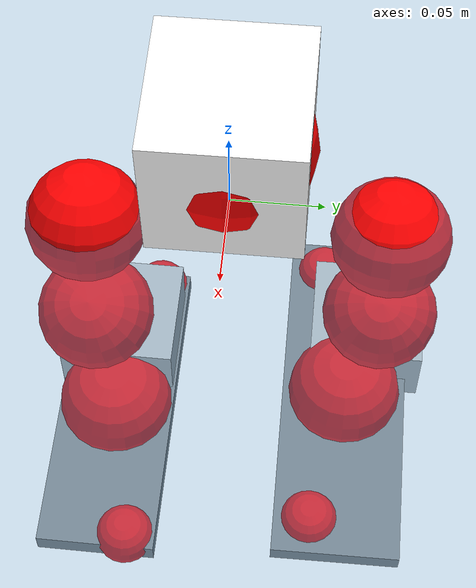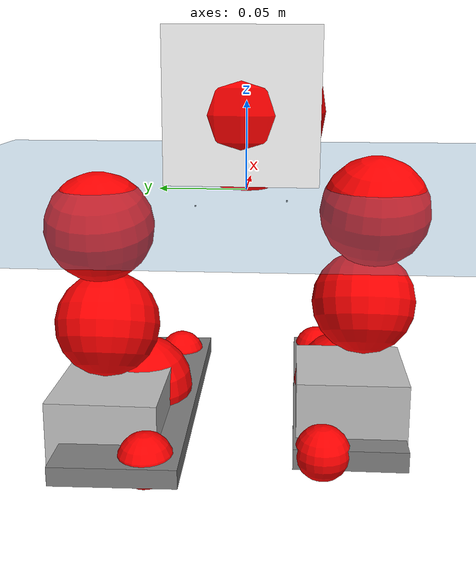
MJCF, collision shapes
<mujoco model="pi_12dof_release_v1">
  <compiler angle="radian" assetdir="assets" balanceinertia="true" inertiafromgeom="false"/>

  <option timestep="0.005" density="1.2" viscosity="2e-05"/>

  <size nkey="1"/>

  <visual>
    <quality shadowsize="8192"/>
    <map shadowclip="0.5"/>
  </visual>

  <default>
    <default class="/">
      <joint armature="0.01" damping="0.01" frictionloss="0.01"/>
      <geom contype="0" conaffinity="0" group="1" solref="-1000 -80"/>
      <site size="0.01 0.005 0.005" group="5"/>
      <general forcelimited="true" biastype="affine" gainprm="20" biasprm="0 -20 -0.5"/>
      <default class="foot">
        <geom size="0.0845 0.036 0.005" type="box" condim="6" group="4" priority="1" friction="0.9 0.2 0.2" solimp="0.015 1 0.005"/>
      </default>
      <default class="reward_collision_sphere">
        <geom group="5" rgba="1 0 0 1"/>
      </default>
    </default>
  </default>

  <asset>
    <texture type="skybox" colorspace="auto" name="//unnamed_texture_0" builtin="gradient" rgb1="0.95 0.95 0.95" rgb2="0.95 0.95 0.95" width="100" height="600"/>
    <texture type="2d" colorspace="auto" name="texplane" builtin="checker" rgb1="0.345 0.575 0.748" rgb2="0.345 0.575 0.748" markrgb="1 1 1" width="512" height="512"/>
    <material name="MatPlane" class="/" texture="texplane" texuniform="true" texrepeat="2 2" specular="0.9"/>
    <mesh name="baselink_1" class="/" file="baselink_1.STL"/>
    <mesh name="r_hip_pitch_link" class="/" file="r_hip_pitch_link.STL"/>
    <mesh name="r_hip_roll_link" class="/" file="r_hip_roll_link.STL"/>
    <mesh name="r_thigh_link" class="/" file="r_thigh_link.STL"/>
    <mesh name="r_calf_link" class="/" file="r_calf_link.STL"/>
    <mesh name="r_ankle_pitch_link" class="/" file="r_ankle_pitch_link.STL"/>
    <mesh name="r_ankle_roll_link" class="/" file="r_ankle_roll_link.STL"/>
    <mesh name="l_hip_pitch_link" class="/" file="l_hip_pitch_link.STL"/>
    <mesh name="l_hip_roll_link" class="/" file="l_hip_roll_link.STL"/>
    <mesh name="l_thigh_link" class="/" file="l_thigh_link.STL"/>
    <mesh name="l_calf_link" class="/" file="l_calf_link.STL"/>
    <mesh name="l_ankle_pitch_link" class="/" file="l_ankle_pitch_link.STL"/>
    <mesh name="l_ankle_roll_link" class="/" file="l_ankle_roll_link.STL"/>
  </asset>

  <worldbody>
    <geom name="floor" class="/" size="100 100 0.125" type="plane" group="0" material="MatPlane"/>
    <light name="toplight_shadow" class="/" pos="0 0 5" dir="0.0990148 0.0990148 -0.990148" type="directional" ambient="0.04 0.04 0.04" diffuse="0.55 0.55 0.55" specular="0.12 0.12 0.12"/>
    <light name="toplight_fill" class="/" pos="0 0 5" dir="0.0990148 0.0990148 -0.990148" type="directional" castshadow="false" ambient="0.04 0.04 0.04" diffuse="0.3 0.3 0.3" specular="0.08 0.08 0.08"/>
    <body name="trunk" pos="-0.00231352 0.000766299 0.014659" quat="0.999977 0.0024682 0.00634967 0.000309648">
      <inertial pos="0.00151259 -0.011859 0.0188463" quat="0.727976 0.0522726 -0.00750255 0.683566" mass="1.05686" diaginertia="0.0221413 0.00231062 4.61455e-05"/>
      <joint name="//unnamed_joint_0" type="free"/>
      <geom name="//unnamed_geom_1" class="/" type="mesh" density="0" rgba="1 1 1 1" mesh="baselink_1"/>
      <geom name="//unnamed_geom_2" class="/" size="0.0405835 0.0405835 0.0405835" pos="0 0 0.0339803" type="box" rgba="1 1 1 1"/>
      <geom name="//unnamed_geom_3" class="reward_collision_sphere" size="0.0446418" pos="0 0 0.0297328"/>
      <site name="imu" class="/" pos="-0.0171327 -0.0435963 0.0561278" size="0.00811669"/>
      <camera name="track" class="/" pos="0 -1.57578 0" quat="0.707107 0.707107 0 0" mode="trackcom"/>
      <camera name="ego_camera" class="/" pos="0.0916774 0 0.0764557" quat="-0.5 -0.5 0.5 0.5"/>
      <body name="r_hip_pitch_link" pos="-0.00137045 -0.0240276 -0.0203761" quat="0.992166 -0.000172175 -0.124923 -0.000357789">
        <inertial pos="0.0142111 -0.0435288 0.0140939" quat="0.037229 0.685095 -0.0641348 0.724669" mass="0.21617" diaginertia="0.000284391 3.49782e-05 1.26324e-06"/>
        <joint name="r_hip_pitch_joint" class="/" pos="0 0 0" axis="0.00433501 -0.999527 -0.03043" stiffness="0.0060576" range="-1.81656 1.33966" armature="0.00774361" damping="0.0139507" frictionloss="0.0069178"/>
        <geom name="//unnamed_geom_4" class="/" type="mesh" density="0" rgba="0.75294 0.75294 0.75294 1" mesh="r_hip_pitch_link"/>
        <geom name="//unnamed_geom_5" class="/" size="0.000405835 0.000405835 0.000405835" type="box" rgba="0.75294 0.75294 0.75294 1"/>
        <body name="r_hip_roll_link" pos="0.0118872 -0.0517325 -0.0110196" quat="1 0.000209292 6.82771e-05 -0.000408609">
          <inertial pos="0.000464934 0.000325234 -0.0249873" quat="0.71396 -0.10194 -0.081165 0.687954" mass="0.228074" diaginertia="0.00100675 9.74406e-05 2.35173e-06"/>
          <joint name="r_hip_roll_joint" class="/" pos="0 0 0" axis="-0.998654 0.0517975 -0.00262993" stiffness="0.00206707" range="-0.0907022 0.501991" armature="0.0142608" damping="0.00333653" frictionloss="0.00445635"/>
          <geom name="//unnamed_geom_6" class="/" type="mesh" density="0" rgba="0.75294 0.75294 0.75294 1" mesh="r_hip_roll_link"/>
          <geom name="//unnamed_geom_7" class="/" size="0.000405835 0.000405835 0.000405835" type="box" rgba="0.75294 0.75294 0.75294 1"/>
          <geom name="//unnamed_geom_8" class="reward_collision_sphere" size="0.0324668"/>
          <body name="r_thigh_link" pos="-0.00478879 0.000974273 -0.0296926" quat="1 -0.000262833 0.000171418 0.000682406">
            <inertial pos="0.0158289 0.014894 -0.0207316" quat="0.737809 0.675 -0.00287302 -0.00209671" mass="0.0610224" diaginertia="0.000400253 2.82528e-05 7.97994e-07"/>
            <joint name="r_thigh_joint" class="/" pos="0 0 0" axis="0.0085413 -0.0116861 -0.999895" range="-0.147671 0.353671" armature="0.0135408" damping="0" frictionloss="0.00935888"/>
            <geom name="//unnamed_geom_9" class="/" type="mesh" density="0" rgba="0.75294 0.75294 0.75294 1" mesh="r_thigh_link"/>
            <geom name="//unnamed_geom_10" class="/" size="0.000405835 0.000405835 0.000405835" type="box" rgba="0.75294 0.75294 0.75294 1"/>
            <body name="r_calf_link" pos="0.00843924 0.00137867 -0.0343519" quat="0.94949 -0.00152238 0.313761 -0.00450938">
              <inertial pos="0.00600489 6.19519e-06 -0.0273324" quat="0.997111 -0.0420668 -0.0631722 0.00317878" mass="0.377313" diaginertia="0.00982844 0.00113195 2.48851e-06"/>
              <joint name="r_calf_joint" class="/" pos="0 0 0" axis="0.0229495 -0.999735 -0.00156485" stiffness="0.0254636" range="-1.65924 0.487198" armature="0.00838792" damping="0.0133259" frictionloss="0.0074615"/>
              <geom name="//unnamed_geom_11" class="/" type="mesh" density="0" rgba="0.75294 0.75294 0.75294 1" mesh="r_calf_link"/>
              <geom name="//unnamed_geom_12" class="/" size="0.000405835 0.000405835 0.000405835" type="box" rgba="0.75294 0.75294 0.75294 1"/>
              <geom name="//unnamed_geom_13" class="reward_collision_sphere" size="0.0324668"/>
              <body name="r_ankle_pitch_link" pos="-0.000548333 0.00878198 -0.0582678" quat="0.979987 -0.00336024 -0.199029 0.00100776">
                <inertial pos="0.0131746 0.00286991 0.00542123" quat="-0.00257445 0.691488 0.00676869 0.722352" mass="0.0799968" diaginertia="0.000823162 7.61033e-05 1.49236e-06"/>
                <joint name="r_ankle_pitch_joint" class="/" pos="0 0 0" axis="0.0128786 -0.998908 0.0449102" range="-1.13292 0.50631" armature="0.010659" damping="0" frictionloss="0.0069511"/>
                <geom name="//unnamed_geom_14" class="/" type="mesh" density="0" rgba="0.75294 0.75294 0.75294 1" mesh="r_ankle_pitch_link"/>
                <geom name="//unnamed_geom_15" class="/" size="0.0316551 0.0324668 0.0202917" type="box" rgba="0.75294 0.75294 0.75294 1"/>
                <body name="r_ankle_roll_link" pos="0.106354 0.000879027 -0.000283298" quat="0.999998 0.000166951 -0.000945032 -0.00159476">
                  <inertial pos="-0.0246517 0.0134557 -0.0175753" quat="0.58121 0.420096 0.481773 0.503596" mass="0.335622" diaginertia="0.0036543 0.000307803 5.10694e-06"/>
                  <joint name="r_ankle_roll_joint" class="/" pos="0 0 0" axis="-0.999999 0.00108945 0.00103576" range="0.161259 -0.0241539" armature="0.0132483" damping="0.0387925" frictionloss="0.0137052"/>
                  <geom name="//unnamed_geom_16" class="/" type="mesh" density="0" rgba="0.75294 0.75294 0.75294 1" mesh="r_ankle_roll_link"/>
                  <geom name="//unnamed_geom_17" class="/" type="mesh" rgba="0.75294 0.75294 0.75294 1" mesh="r_ankle_roll_link"/>
                  <geom name="right_foot" class="foot" size="0.0904063 0.032862 0.00624215" pos="-0.0623406 0 -0.0186892"/>
                  <geom name="//unnamed_geom_19" class="reward_collision_sphere" size="0.0324668" pos="-0.0611182 0 -0.00849507"/>
                  <geom name="//unnamed_geom_20" class="reward_collision_sphere" size="0.0162334" pos="0.0183355 0.0157578 -0.0169901"/>
                  <geom name="//unnamed_geom_21" class="reward_collision_sphere" size="0.0162334" pos="-0.146684 0.0157578 -0.0169901"/>
                  <site name="right_foot" class="foot" pos="-0.0623406 0 -0.0186892" size="0.00811669"/>
                </body>
              </body>
            </body>
          </body>
        </body>
      </body>
      <body name="l_hip_pitch_link" pos="-8.58452e-05 0.0283178 -0.0243177" quat="0.991888 -0.000504836 -0.127112 0.000780977">
        <inertial pos="0.00624158 0.0559859 0.0146115" quat="-0.00864081 0.712369 0.0350212 0.700878" mass="0.236663" diaginertia="0.000424644 3.25108e-05 1.75705e-06"/>
        <joint name="l_hip_pitch_joint" class="/" pos="0 0 0" axis="0.061659 0.99807 0.00739188" stiffness="0.0525572" range="-0.959201 1.91146" armature="0.00827594" damping="0.0615196" frictionloss="0.00484743"/>
        <geom name="//unnamed_geom_22" class="/" type="mesh" density="0" rgba="0.75294 0.75294 0.75294 1" mesh="l_hip_pitch_link"/>
        <geom name="//unnamed_geom_23" class="/" size="0.000405835 0.000405835 0.000405835" type="box" rgba="0.75294 0.75294 0.75294 1"/>
        <body name="l_hip_roll_link" pos="-0.000461379 0.0571704 -0.014319" quat="0.999986 0.00239719 0.0028258 -0.00375296">
          <inertial pos="-0.0179577 0.0107696 -0.010576" quat="0.699265 -0.0756554 -0.0767065 0.706697" mass="0.168042" diaginertia="0.000604005 6.53019e-05 1.24529e-06"/>
          <joint name="l_hip_roll_joint" class="/" pos="0 0 0" axis="-0.999995 0.000245354 -0.0032173" stiffness="0.0118856" range="-0.499808 0.291362" armature="0.0118523" damping="0" frictionloss="0.00823977"/>
          <geom name="//unnamed_geom_24" class="/" type="mesh" density="0" rgba="0.75294 0.75294 0.75294 1" mesh="l_hip_roll_link"/>
          <geom name="//unnamed_geom_25" class="/" size="0.000405835 0.000405835 0.000405835" type="box" rgba="0.75294 0.75294 0.75294 1"/>
          <geom name="//unnamed_geom_26" class="reward_collision_sphere" size="0.0324668"/>
          <body name="l_thigh_link" pos="0.00890515 0.00043339 -0.0202144" quat="0.999984 4.60645e-05 -0.000473819 0.00561756">
            <inertial pos="0.0143067 -0.0109972 -0.00528734" quat="0.698307 0.713528 -0.00269456 0.0569003" mass="0.0673619" diaginertia="0.000390262 3.56465e-05 8.27087e-07"/>
            <joint name="l_thigh_joint" class="/" pos="0 0 0" axis="0.00100313 0.00067301 -0.999999" stiffness="0.0131925" range="-0.594328 0.345607" armature="0.0104562" damping="0.0276235" frictionloss="0.0020001"/>
            <geom name="//unnamed_geom_27" class="/" type="mesh" density="0" rgba="0.75294 0.75294 0.75294 1" mesh="l_thigh_link"/>
            <geom name="//unnamed_geom_28" class="/" size="0.000405835 0.000405835 0.000405835" type="box" rgba="0.75294 0.75294 0.75294 1"/>
            <body name="l_calf_link" pos="-0.0156736 -0.00144713 -0.0427483" quat="0.947639 -0.000109761 0.319345 -9.27545e-05">
              <inertial pos="0.0119588 0.0119731 -0.0324869" quat="0.998102 -0.0364704 0.0241431 -0.0433505" mass="0.425962" diaginertia="0.00647995 0.000867208 1.77139e-06"/>
              <joint name="l_calf_joint" class="/" pos="0 0 0" axis="0.0411615 0.999146 0.00366041" stiffness="0.0597495" range="-0.398648 1.38188" armature="0.00654459" damping="0.0555627" frictionloss="0.0042619"/>
              <geom name="//unnamed_geom_29" class="/" type="mesh" density="0" rgba="0.75294 0.75294 0.75294 1" mesh="l_calf_link"/>
              <geom name="//unnamed_geom_30" class="/" size="0.000405835 0.000405835 0.000405835" type="box" rgba="0.75294 0.75294 0.75294 1"/>
              <geom name="//unnamed_geom_31" class="reward_collision_sphere" size="0.0324668"/>
              <body name="l_ankle_pitch_link" pos="0.00234986 -0.00508726 -0.0553537" quat="0.98015 -0.000173214 -0.198254 -0.00106366">
                <inertial pos="-0.00101283 0.0074769 0.0129476" quat="0.0305767 0.725827 0.0245999 0.686757" mass="0.119328" diaginertia="0.000755976 7.13296e-05 1.6741e-06"/>
                <joint name="l_ankle_pitch_joint" class="/" pos="0 0 0" axis="-0.000318186 0.999991 -0.00428864" range="-0.311605 1.28308" armature="0.0113016" damping="0.0815886" frictionloss="0.0127259"/>
                <geom name="//unnamed_geom_32" class="/" type="mesh" density="0" rgba="0.75294 0.75294 0.75294 1" mesh="l_ankle_pitch_link"/>
                <geom name="//unnamed_geom_33" class="/" size="0.0316551 0.0324668 0.0202917" type="box" rgba="0.75294 0.75294 0.75294 1"/>
                <body name="l_ankle_roll_link" pos="0.105738 -0.0109448 0.0105872" quat="0.999969 -0.00665167 -0.00384328 0.00185525">
                  <inertial pos="-0.0345571 -0.0012953 -0.00616834" quat="0.50996 0.450824 0.424299 0.597218" mass="0.256876" diaginertia="0.00284205 0.000249939 4.07112e-06"/>
                  <joint name="l_ankle_roll_joint" class="/" pos="0 0 0" axis="-0.999979 0.00491387 0.00431742" stiffness="0.0195159" range="-0.211025 0.465534" armature="0.00841173" damping="0.0562275" frictionloss="0.0112015"/>
                  <geom name="//unnamed_geom_34" class="/" type="mesh" density="0" rgba="0.75294 0.75294 0.75294 1" mesh="l_ankle_roll_link"/>
                  <geom name="//unnamed_geom_35" class="/" type="mesh" rgba="0.75294 0.75294 0.75294 1" mesh="l_ankle_roll_link"/>
                  <geom name="left_foot" class="foot" size="0.102147 0.0358437 0.00565002" pos="-0.0623406 0 -0.0186892"/>
                  <geom name="//unnamed_geom_37" class="reward_collision_sphere" size="0.0324668" pos="-0.0611182 0 -0.00849507"/>
                  <geom name="//unnamed_geom_38" class="reward_collision_sphere" size="0.0162334" pos="0.0183355 -0.0157578 -0.0169901"/>
                  <geom name="//unnamed_geom_39" class="reward_collision_sphere" size="0.0162334" pos="-0.146684 -0.0157578 -0.0169901"/>
                  <site name="left_foot" class="foot" pos="-0.0623406 0 -0.0186892" size="0.00811669"/>
                </body>
              </body>
            </body>
          </body>
        </body>
      </body>
    </body>
  </worldbody>

  <contact>
    <pair class="/" geom1="floor" geom2="right_foot" name="//unnamed_contact_1"/>
    <pair class="/" geom1="floor" geom2="left_foot" name="//unnamed_contact_0"/>
  </contact>

  <actuator>
    <general name="r_hip_pitch_joint" class="/" joint="r_hip_pitch_joint" forcerange="-9.07891 9.07891" gainprm="22.6036" biasprm="0 -22.6036 -0.537608"/>
    <general name="r_hip_roll_joint" class="/" joint="r_hip_roll_joint" forcerange="-26.8205 26.8205" gainprm="22.6036" biasprm="0 -22.6036 -0.537608"/>
    <general name="r_thigh_joint" class="/" joint="r_thigh_joint" forcerange="-16.5918 16.5918" gainprm="22.6036" biasprm="0 -22.6036 -0.537608"/>
    <general name="r_calf_joint" class="/" joint="r_calf_joint" forcerange="-6.97175 6.97175" gainprm="22.6036" biasprm="0 -22.6036 -0.537608"/>
    <general name="r_ankle_pitch_joint" class="/" joint="r_ankle_pitch_joint" forcerange="-21.4806 21.4806" gainprm="22.6036" biasprm="0 -22.6036 -0.537608"/>
    <general name="r_ankle_roll_joint" class="/" joint="r_ankle_roll_joint" forcerange="-26.7261 26.7261" gainprm="22.6036" biasprm="0 -22.6036 -0.537608"/>
    <general name="l_hip_pitch_joint" class="/" joint="l_hip_pitch_joint" forcerange="-16.9862 16.9862" gainprm="22.6036" biasprm="0 -22.6036 -0.537608"/>
    <general name="l_hip_roll_joint" class="/" joint="l_hip_roll_joint" forcerange="-14.9491 14.9491" gainprm="22.6036" biasprm="0 -22.6036 -0.537608"/>
    <general name="l_thigh_joint" class="/" joint="l_thigh_joint" forcerange="-11.5937 11.5937" gainprm="22.6036" biasprm="0 -22.6036 -0.537608"/>
    <general name="l_calf_joint" class="/" joint="l_calf_joint" forcerange="-18.9474 18.9474" gainprm="22.6036" biasprm="0 -22.6036 -0.537608"/>
    <general name="l_ankle_pitch_joint" class="/" joint="l_ankle_pitch_joint" forcerange="-11.787 11.787" gainprm="22.6036" biasprm="0 -22.6036 -0.537608"/>
    <general name="l_ankle_roll_joint" class="/" joint="l_ankle_roll_joint" forcerange="-16.6849 16.6849" gainprm="22.6036" biasprm="0 -22.6036 -0.537608"/>
  </actuator>

  <sensor>
    <gyro site="imu" name="imu_angular_velocity"/>
    <velocimeter site="imu" name="imu_linear_velocity"/>
    <framelinvel objtype="site" objname="left_foot" name="left_foot_global_linear_velocity"/>
    <framelinvel objtype="site" objname="right_foot" name="right_foot_global_linear_velocity"/>
  </sensor>

  <keyframe>
    <key name="home" qpos="0 0 0.291 1 0 0 0 0.4 0 0 -0.8 0.4 0 -0.4 0 0 0.8 -0.4 0"/>
  </keyframe>
</mujoco>
